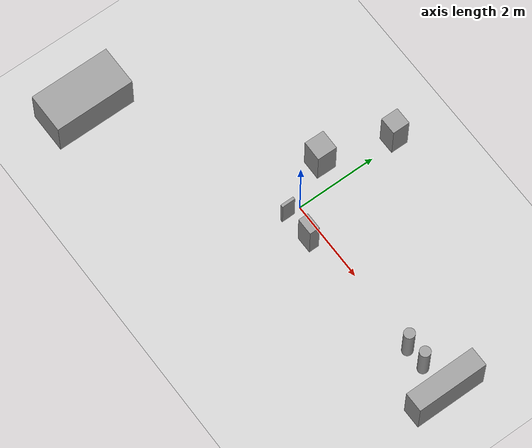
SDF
<sdf version="1.6">
 <world name="default">
  <model name="ground_plane">
   <static>1</static>
   <link name="link">
    <collision name="collision">
     <geometry><plane><normal>0 0 1</normal><size>100 100</size></plane></geometry>
     <surface><friction><ode><mu>100</mu><mu2>50</mu2></ode></friction></surface>
    </collision>
    <visual name="visual">
     <cast_shadows>0</cast_shadows>
     <geometry><plane><normal>0 0 1</normal><size>100 100</size></plane></geometry>
     <material>
      <script><uri>file://media/materials/scripts/gazebo.material</uri><name>Gazebo/Grey</name></script>
     </material>
    </visual>
   </link>
  </model>
  <model name="cma_picador_0">
   <link name="link_2">
    <pose>-0.7258 -1.69104 0 0 -0 0</pose>
    <inertial>
     <mass>0.104732</mass>
     <inertia>
      <ixx>0.00927906</ixx>
      <ixy>0</ixy>
      <ixz>0</ixz>
      <iyy>0.010243</iyy>
      <iyz>0</iyz>
      <izz>0.00206672</izz>
     </inertia>
    </inertial>
    <visual name="visual">
     <geometry><box><size>0.416688 0.25134 1</size></box></geometry>
     <material>
      <lighting>1</lighting>
      <script><uri>file://media/materials/scripts/gazebo.material</uri><name>Gazebo/Grey</name></script>
      <ambient>0.3 0.3 0.3 1</ambient>
      <diffuse>0.7 0.7 0.7 1</diffuse>
      <specular>0.01 0.01 0.01 1</specular>
      <emissive>0 0 0 1</emissive>
     </material>
    </visual>
    <collision name="collision">
     <geometry><box><size>0.416688 0.25134 1</size></box></geometry>
     <surface>
      <friction>
       <ode><mu>1</mu><mu2>1</mu2><fdir1>0 0 0</fdir1><slip1>0</slip1><slip2>0</slip2></ode>
       <torsional>
        <coefficient>1</coefficient>
        <patch_radius>0</patch_radius>
        <surface_radius>0</surface_radius>
        <use_patch_radius>1</use_patch_radius>
        <ode><slip>0</slip></ode>
       </torsional>
      </friction>
      <bounce><restitution_coefficient>0</restitution_coefficient><threshold>1e+06</threshold></bounce>
      <contact>
       <collide_without_contact>0</collide_without_contact>
       <collide_without_contact_bitmask>1</collide_without_contact_bitmask>
       <collide_bitmask>1</collide_bitmask>
       <ode>
        <soft_cfm>0</soft_cfm>
        <soft_erp>0.2</soft_erp>
        <kp>1e+13</kp>
        <kd>1</kd>
        <max_vel>0.01</max_vel>
        <min_depth>0</min_depth>
       </ode>
       <bullet>
        <split_impulse>1</split_impulse>
        <split_impulse_penetration_threshold>-0.01</split_impulse_penetration_threshold>
        <soft_cfm>0</soft_cfm>
        <soft_erp>0.2</soft_erp>
        <kp>1e+13</kp>
        <kd>1</kd>
       </bullet>
      </contact>
     </surface>
    </collision>
   </link>
   <static>0</static>
   <pose>1.48877 1.3528 0.499993 -2e-06 3e-06 -0.000899</pose>
  </model>
  <model name="cma_gaveteiro_pequeno_0">
   <link name="link_0">
    <pose>0.256174 1.25055 0.5 0 -0 0</pose>
    <inertial>
     <mass>0.187186</mass>
     <inertia>
      <ixx>0.01851</ixx>
      <ixy>0</ixy>
      <ixz>0</ixz>
      <iyy>0.0185276</iyy>
      <iyz>0</iyz>
      <izz>0.00583981</izz>
     </inertia>
    </inertial>
    <visual name="visual">
     <geometry><box><size>0.433317 0.432002 1</size></box></geometry>
     <material>
      <lighting>1</lighting>
      <script><uri>file://media/materials/scripts/gazebo.material</uri><name>Gazebo/Grey</name></script>
      <ambient>0.3 0.3 0.3 1</ambient>
      <diffuse>0.7 0.7 0.7 1</diffuse>
      <specular>0.01 0.01 0.01 1</specular>
      <emissive>0 0 0 1</emissive>
     </material>
    </visual>
    <collision name="collision">
     <geometry><box><size>0.433317 0.432002 1</size></box></geometry>
     <surface>
      <friction>
       <ode><mu>1</mu><mu2>1</mu2><fdir1>0 0 0</fdir1><slip1>0</slip1><slip2>0</slip2></ode>
       <torsional>
        <coefficient>1</coefficient>
        <patch_radius>0</patch_radius>
        <surface_radius>0</surface_radius>
        <use_patch_radius>1</use_patch_radius>
        <ode><slip>0</slip></ode>
       </torsional>
      </friction>
      <bounce><restitution_coefficient>0</restitution_coefficient><threshold>1e+06</threshold></bounce>
      <contact>
       <collide_without_contact>0</collide_without_contact>
       <collide_without_contact_bitmask>1</collide_without_contact_bitmask>
       <collide_bitmask>1</collide_bitmask>
       <ode>
        <soft_cfm>0</soft_cfm>
        <soft_erp>0.2</soft_erp>
        <kp>1e+13</kp>
        <kd>1</kd>
        <max_vel>0.01</max_vel>
        <min_depth>0</min_depth>
       </ode>
       <bullet>
        <split_impulse>1</split_impulse>
        <split_impulse_penetration_threshold>-0.01</split_impulse_penetration_threshold>
        <soft_cfm>0</soft_cfm>
        <soft_erp>0.2</soft_erp>
        <kp>1e+13</kp>
        <kd>1</kd>
       </bullet>
      </contact>
     </surface>
    </collision>
   </link>
   <static>0</static>
   <pose>-0.336012 1.39513 0 0 -7e-06 -3.4e-05</pose>
  </model>
  <model name="cma_gaveteiro_0">
   <link name="link_0">
    <pose>-0 4e-06 0 0 -0 0</pose>
    <inertial>
     <mass>0.245086</mass>
     <inertia>
      <ixx>0.025418</ixx>
      <ixy>0</ixy>
      <ixz>0</ixz>
      <iyy>0.0254411</iyy>
      <iyz>0</iyz>
      <izz>0.0100113</izz>
     </inertia>
    </inertial>
    <visual name="visual">
     <geometry><box><size>0.495657 0.494491 1</size></box></geometry>
     <material>
      <lighting>1</lighting>
      <script><uri>file://media/materials/scripts/gazebo.material</uri><name>Gazebo/Grey</name></script>
      <ambient>0.3 0.3 0.3 1</ambient>
      <diffuse>0.7 0.7 0.7 1</diffuse>
      <specular>0.01 0.01 0.01 1</specular>
      <emissive>0 0 0 1</emissive>
     </material>
    </visual>
    <collision name="collision">
     <geometry><box><size>0.495657 0.494491 1</size></box></geometry>
     <surface>
      <friction>
       <ode><mu>1</mu><mu2>1</mu2><fdir1>0 0 0</fdir1><slip1>0</slip1><slip2>0</slip2></ode>
       <torsional>
        <coefficient>1</coefficient>
        <patch_radius>0</patch_radius>
        <surface_radius>0</surface_radius>
        <use_patch_radius>1</use_patch_radius>
        <ode><slip>0</slip></ode>
       </torsional>
      </friction>
      <bounce><restitution_coefficient>0</restitution_coefficient><threshold>1e+06</threshold></bounce>
      <contact>
       <collide_without_contact>0</collide_without_contact>
       <collide_without_contact_bitmask>1</collide_without_contact_bitmask>
       <collide_bitmask>1</collide_bitmask>
       <ode>
        <soft_cfm>0</soft_cfm>
        <soft_erp>0.2</soft_erp>
        <kp>1e+13</kp>
        <kd>1</kd>
        <max_vel>0.01</max_vel>
        <min_depth>0</min_depth>
       </ode>
       <bullet>
        <split_impulse>1</split_impulse>
        <split_impulse_penetration_threshold>-0.01</split_impulse_penetration_threshold>
        <soft_cfm>0</soft_cfm>
        <soft_erp>0.2</soft_erp>
        <kp>1e+13</kp>
        <kd>1</kd>
       </bullet>
      </contact>
     </surface>
    </collision>
   </link>
   <static>0</static>
   <pose>-0.578044 0.983829 0.5 0 0 -0.015392</pose>
  </model>
  <model name="cma_sofa2">
   <link name="link_0">
    <pose>-4.668 -2.00601 0.5 0 -0 0</pose>
    <inertial>
     <mass>1.98683</mass>
     <inertia>
      <ixx>0.819149</ixx>
      <ixy>0</ixy>
      <ixz>0</ixz>
      <iyy>0.331138</iyy>
      <iyz>0</iyz>
      <izz>0.819149</izz>
     </inertia>
    </inertial>
    <visual name="visual">
     <geometry><box><size>1 1.98682 1</size></box></geometry>
     <material>
      <lighting>1</lighting>
      <script><uri>file://media/materials/scripts/gazebo.material</uri><name>Gazebo/Grey</name></script>
      <ambient>0.3 0.3 0.3 1</ambient>
      <diffuse>0.7 0.7 0.7 1</diffuse>
      <specular>0.01 0.01 0.01 1</specular>
      <emissive>0 0 0 1</emissive>
     </material>
    </visual>
    <collision name="collision">
     <geometry><box><size>1 1.98682 1</size></box></geometry>
     <surface>
      <friction>
       <ode><mu>1</mu><mu2>1</mu2><fdir1>0 0 0</fdir1><slip1>0</slip1><slip2>0</slip2></ode>
       <torsional>
        <coefficient>1</coefficient>
        <patch_radius>0</patch_radius>
        <surface_radius>0</surface_radius>
        <use_patch_radius>1</use_patch_radius>
        <ode><slip>0</slip></ode>
       </torsional>
      </friction>
      <bounce><restitution_coefficient>0</restitution_coefficient><threshold>1e+06</threshold></bounce>
      <contact>
       <collide_without_contact>0</collide_without_contact>
       <collide_without_contact_bitmask>1</collide_without_contact_bitmask>
       <collide_bitmask>1</collide_bitmask>
       <ode>
        <soft_cfm>0</soft_cfm>
        <soft_erp>0.2</soft_erp>
        <kp>1e+13</kp>
        <kd>1</kd>
        <max_vel>0.01</max_vel>
        <min_depth>0</min_depth>
       </ode>
       <bullet>
        <split_impulse>1</split_impulse>
        <split_impulse_penetration_threshold>-0.01</split_impulse_penetration_threshold>
        <soft_cfm>0</soft_cfm>
        <soft_erp>0.2</soft_erp>
        <kp>1e+13</kp>
        <kd>1</kd>
       </bullet>
      </contact>
     </surface>
    </collision>
   </link>
   <static>0</static>
   <pose>-0.095322 -0.407865 1.8e-05 0 -3e-06 -8e-06</pose>
  </model>
  <model name="cma_pe_mesa2">
   <link name="link_0">
    <pose>-1e-06 0 0 0 -0 0</pose>
    <inertial>
     <mass>0.0184993</mass>
     <inertia>
      <ixx>0.00113785</ixx>
      <ixy>0</ixy>
      <ixz>0</ixz>
      <iyy>0.000973568</iyy>
      <iyz>0</iyz>
      <izz>0.000179385</izz>
     </inertia>
    </inertial>
    <visual name="visual">
     <geometry><box><size>0.070005 0.33386 0.791592</size></box></geometry>
     <material>
      <lighting>1</lighting>
      <script><uri>file://media/materials/scripts/gazebo.material</uri><name>Gazebo/Grey</name></script>
      <ambient>0.3 0.3 0.3 1</ambient>
      <diffuse>0.7 0.7 0.7 1</diffuse>
      <specular>0.01 0.01 0.01 1</specular>
      <emissive>0 0 0 1</emissive>
     </material>
    </visual>
    <collision name="collision">
     <geometry><box><size>0.070005 0.33386 0.791592</size></box></geometry>
     <surface>
      <friction>
       <ode><mu>1</mu><mu2>1</mu2><fdir1>0 0 0</fdir1><slip1>0</slip1><slip2>0</slip2></ode>
       <torsional>
        <coefficient>1</coefficient>
        <patch_radius>0</patch_radius>
        <surface_radius>0</surface_radius>
        <use_patch_radius>1</use_patch_radius>
        <ode><slip>0</slip></ode>
       </torsional>
      </friction>
      <bounce><restitution_coefficient>0</restitution_coefficient><threshold>1e+06</threshold></bounce>
      <contact>
       <collide_without_contact>0</collide_without_contact>
       <collide_without_contact_bitmask>1</collide_without_contact_bitmask>
       <collide_bitmask>1</collide_bitmask>
       <ode>
        <soft_cfm>0</soft_cfm>
        <soft_erp>0.2</soft_erp>
        <kp>1e+13</kp>
        <kd>1</kd>
        <max_vel>0.01</max_vel>
        <min_depth>0</min_depth>
       </ode>
       <bullet>
        <split_impulse>1</split_impulse>
        <split_impulse_penetration_threshold>-0.01</split_impulse_penetration_threshold>
        <soft_cfm>0</soft_cfm>
        <soft_erp>0.2</soft_erp>
        <kp>1e+13</kp>
        <kd>1</kd>
       </bullet>
      </contact>
     </surface>
    </collision>
   </link>
   <static>0</static>
   <pose>0.008625 -0.342093 0.395795 -4e-06 -2e-06 0.000492</pose>
  </model>
  <model name="cma_armario_coz_190x40cm">
   <link name="link_3">
    <pose>-3e-06 1e-06 0 0 -0 0</pose>
    <inertial>
     <mass>0.848618</mass>
     <inertia>
      <ixx>0.28876</ixx>
      <ixy>0</ixy>
      <ixz>0</ixz>
      <iyy>0.0872359</iyy>
      <iyz>0</iyz>
      <izz>0.234559</izz>
     </inertia>
    </inertial>
    <visual name="visual">
     <geometry><box><size>0.483301 1.75592 1</size></box></geometry>
     <material>
      <lighting>1</lighting>
      <script><uri>file://media/materials/scripts/gazebo.material</uri><name>Gazebo/Grey</name></script>
      <ambient>0.3 0.3 0.3 1</ambient>
      <diffuse>0.7 0.7 0.7 1</diffuse>
      <specular>0.01 0.01 0.01 1</specular>
      <emissive>0 0 0 1</emissive>
     </material>
    </visual>
    <collision name="collision">
     <geometry><box><size>0.483301 1.75592 1</size></box></geometry>
     <surface>
      <friction>
       <ode><mu>1</mu><mu2>1</mu2><fdir1>0 0 0</fdir1><slip1>0</slip1><slip2>0</slip2></ode>
       <torsional>
        <coefficient>1</coefficient>
        <patch_radius>0</patch_radius>
        <surface_radius>0</surface_radius>
        <use_patch_radius>1</use_patch_radius>
        <ode><slip>0</slip></ode>
       </torsional>
      </friction>
      <bounce><restitution_coefficient>0</restitution_coefficient><threshold>1e+06</threshold></bounce>
      <contact>
       <collide_without_contact>0</collide_without_contact>
       <collide_without_contact_bitmask>1</collide_without_contact_bitmask>
       <collide_bitmask>1</collide_bitmask>
       <ode>
        <soft_cfm>0</soft_cfm>
        <soft_erp>0.2</soft_erp>
        <kp>1e+13</kp>
        <kd>1</kd>
        <max_vel>0.01</max_vel>
        <min_depth>0</min_depth>
       </ode>
       <bullet>
        <split_impulse>1</split_impulse>
        <split_impulse_penetration_threshold>-0.01</split_impulse_penetration_threshold>
        <soft_cfm>0</soft_cfm>
        <soft_erp>0.2</soft_erp>
        <kp>1e+13</kp>
        <kd>1</kd>
       </bullet>
      </contact>
     </surface>
    </collision>
   </link>
   <static>0</static>
   <pose>5.3311 -0.14817 0.499995 -6e-06 -0 -0.001287</pose>
  </model>
  <model name="cma_lixo_4">
   <link name="link_1">
    <pose>0.882962 1.81586 0.5 0 -0 0</pose>
    <inertial>
     <mass>0.0687644</mass>
     <inertia>
      <ixx>0.00602588</ixx>
      <ixy>0</ixy>
      <ixz>0</ixz>
      <iyy>0.00602588</iyy>
      <iyz>0</iyz>
      <izz>0.000591068</izz>
     </inertia>
    </inertial>
    <visual name="visual">
     <geometry><cylinder><radius>0.131112</radius><length>1</length></cylinder></geometry>
     <material>
      <lighting>1</lighting>
      <script><uri>file://media/materials/scripts/gazebo.material</uri><name>Gazebo/Grey</name></script>
      <ambient>0.3 0.3 0.3 1</ambient>
      <diffuse>0.7 0.7 0.7 1</diffuse>
      <specular>0.01 0.01 0.01 1</specular>
      <emissive>0 0 0 1</emissive>
     </material>
    </visual>
    <collision name="collision">
     <geometry><cylinder><radius>0.131112</radius><length>1</length></cylinder></geometry>
     <surface>
      <friction>
       <ode><mu>1</mu><mu2>1</mu2><fdir1>0 0 0</fdir1><slip1>0</slip1><slip2>0</slip2></ode>
       <torsional>
        <coefficient>1</coefficient>
        <patch_radius>0</patch_radius>
        <surface_radius>0</surface_radius>
        <use_patch_radius>1</use_patch_radius>
        <ode><slip>0</slip></ode>
       </torsional>
      </friction>
      <bounce><restitution_coefficient>0</restitution_coefficient><threshold>1e+06</threshold></bounce>
      <contact>
       <collide_without_contact>0</collide_without_contact>
       <collide_without_contact_bitmask>1</collide_without_contact_bitmask>
       <collide_bitmask>1</collide_bitmask>
       <ode>
        <soft_cfm>0</soft_cfm>
        <soft_erp>0.2</soft_erp>
        <kp>1e+13</kp>
        <kd>1</kd>
        <max_vel>0.01</max_vel>
        <min_depth>0</min_depth>
       </ode>
       <bullet>
        <split_impulse>1</split_impulse>
        <split_impulse_penetration_threshold>-0.01</split_impulse_penetration_threshold>
        <soft_cfm>0</soft_cfm>
        <soft_erp>0.2</soft_erp>
        <kp>1e+13</kp>
        <kd>1</kd>
       </bullet>
      </contact>
     </surface>
    </collision>
   </link>
   <static>0</static>
   <pose>3.1651 -1.9552 -7e-06 0 -0 0</pose>
  </model>
  <model name="cma_lixo_5">
   <link name="link_1">
    <pose>0.882962 1.81586 0.5 0 -0 0</pose>
    <inertial>
     <mass>0.0687644</mass>
     <inertia>
      <ixx>0.00602588</ixx>
      <ixy>0</ixy>
      <ixz>0</ixz>
      <iyy>0.00602588</iyy>
      <iyz>0</iyz>
      <izz>0.000591068</izz>
     </inertia>
    </inertial>
    <visual name="visual">
     <geometry><cylinder><radius>0.131112</radius><length>1</length></cylinder></geometry>
     <material>
      <lighting>1</lighting>
      <script><uri>file://media/materials/scripts/gazebo.material</uri><name>Gazebo/Grey</name></script>
      <ambient>0.3 0.3 0.3 1</ambient>
      <diffuse>0.7 0.7 0.7 1</diffuse>
      <specular>0.01 0.01 0.01 1</specular>
      <emissive>0 0 0 1</emissive>
     </material>
    </visual>
    <collision name="collision">
     <geometry><cylinder><radius>0.131112</radius><length>1</length></cylinder></geometry>
     <surface>
      <friction>
       <ode><mu>1</mu><mu2>1</mu2><fdir1>0 0 0</fdir1><slip1>0</slip1><slip2>0</slip2></ode>
       <torsional>
        <coefficient>1</coefficient>
        <patch_radius>0</patch_radius>
        <surface_radius>0</surface_radius>
        <use_patch_radius>1</use_patch_radius>
        <ode><slip>0</slip></ode>
       </torsional>
      </friction>
      <bounce><restitution_coefficient>0</restitution_coefficient><threshold>1e+06</threshold></bounce>
      <contact>
       <collide_without_contact>0</collide_without_contact>
       <collide_without_contact_bitmask>1</collide_without_contact_bitmask>
       <collide_bitmask>1</collide_bitmask>
       <ode>
        <soft_cfm>0</soft_cfm>
        <soft_erp>0.2</soft_erp>
        <kp>1e+13</kp>
        <kd>1</kd>
        <max_vel>0.01</max_vel>
        <min_depth>0</min_depth>
       </ode>
       <bullet>
        <split_impulse>1</split_impulse>
        <split_impulse_penetration_threshold>-0.01</split_impulse_penetration_threshold>
        <soft_cfm>0</soft_cfm>
        <soft_erp>0.2</soft_erp>
        <kp>1e+13</kp>
        <kd>1</kd>
       </bullet>
      </contact>
     </surface>
    </collision>
   </link>
   <static>0</static>
   <pose>3.69005 -1.94018 -7e-06 0 -0 0</pose>
  </model>
 </world>
</sdf>
